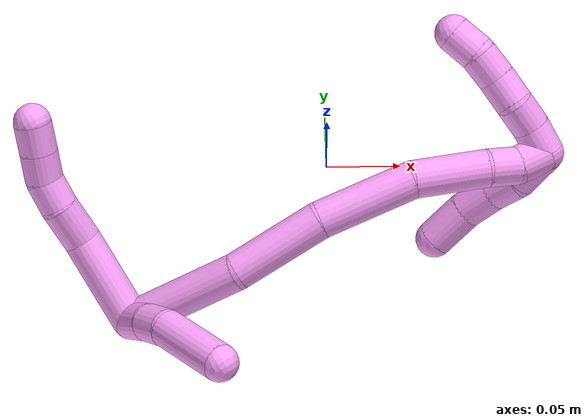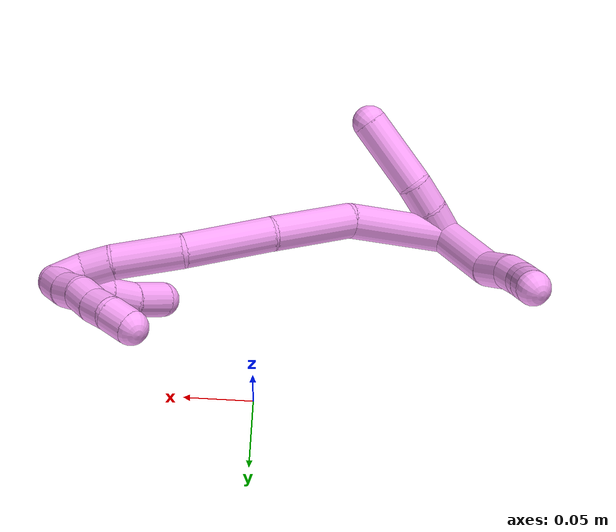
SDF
<sdf version="1.7">
 <world name="default">
  <model name="4">
   <static>0</static>
   <link name="4">
    <collision name="collision-cylinder-e_1_2_8">
     <pose>-0.000805 -0.002108 0.030663 0.068634 -0.026192 -0.000899</pose>
     <geometry><cylinder><radius>0.0125</radius><length>0.061492</length></cylinder></geometry>
     <surface>
      <friction><ode><mu>1.16</mu><mu2>1.16</mu2><slip1>0</slip1><slip2>0</slip2></ode></friction>
      <contact><ode><kp>1e+06</kp><kd>1</kd><max_vel>0</max_vel><min_depth>0.001</min_depth></ode></contact>
     </surface>
    </collision>
    <visual name="visual-cylinder-e_1_2_8">
     <pose>-0.000805 -0.002108 0.030663 0.068634 -0.026192 -0.000899</pose>
     <geometry><cylinder><radius>0.0125</radius><length>0.061492</length></cylinder></geometry>
     <material><ambient>1 0.65098 0.996078 1</ambient></material>
    </visual>
    <collision name="collision-cylinder-e_2_8_9">
     <pose>-0.003469 -0.00936 0.074305 0.377375 -0.13237 -0.025313</pose>
     <geometry><cylinder><radius>0.0125</radius><length>0.028167</length></cylinder></geometry>
     <surface>
      <friction><ode><mu>1.16</mu><mu2>1.16</mu2><slip1>0</slip1><slip2>0</slip2></ode></friction>
      <contact><ode><kp>1e+06</kp><kd>1</kd><max_vel>0</max_vel><min_depth>0.001</min_depth></ode></contact>
     </surface>
    </collision>
    <visual name="visual-cylinder-e_2_8_9">
     <pose>-0.003469 -0.00936 0.074305 0.377375 -0.13237 -0.025313</pose>
     <geometry><cylinder><radius>0.0125</radius><length>0.028167</length></cylinder></geometry>
     <material><ambient>1 0.65098 0.996078 1</ambient></material>
    </visual>
    <collision name="collision-cylinder-e_3_9_10">
     <pose>-0.005399 -0.016667 0.097046 0.21806 -0.007109 -0.000778</pose>
     <geometry><cylinder><radius>0.0125</radius><length>0.02</length></cylinder></geometry>
     <surface>
      <friction><ode><mu>1.16</mu><mu2>1.16</mu2><slip1>0</slip1><slip2>0</slip2></ode></friction>
      <contact><ode><kp>1e+06</kp><kd>1</kd><max_vel>0</max_vel><min_depth>0.001</min_depth></ode></contact>
     </surface>
    </collision>
    <visual name="visual-cylinder-e_3_9_10">
     <pose>-0.005399 -0.016667 0.097046 0.21806 -0.007109 -0.000778</pose>
     <geometry><cylinder><radius>0.0125</radius><length>0.02</length></cylinder></geometry>
     <material><ambient>1 0.65098 0.996078 1</ambient></material>
    </visual>
    <collision name="collision-cylinder-e_4_10_11">
     <pose>-0.003151 -0.023311 0.115557 0.473294 0.231683 0.056111</pose>
     <geometry><cylinder><radius>0.0125</radius><length>0.020198</length></cylinder></geometry>
     <surface>
      <friction><ode><mu>1.16</mu><mu2>1.16</mu2><slip1>0</slip1><slip2>0</slip2></ode></friction>
      <contact><ode><kp>1e+06</kp><kd>1</kd><max_vel>0</max_vel><min_depth>0.001</min_depth></ode></contact>
     </surface>
    </collision>
    <visual name="visual-cylinder-e_4_10_11">
     <pose>-0.003151 -0.023311 0.115557 0.473294 0.231683 0.056111</pose>
     <geometry><cylinder><radius>0.0125</radius><length>0.020198</length></cylinder></geometry>
     <material><ambient>1 0.65098 0.996078 1</ambient></material>
    </visual>
    <collision name="collision-cylinder-e_5_11_6">
     <pose>0.0014 -0.032232 0.133065 0.469174 0.223515 0.053628</pose>
     <geometry><cylinder><radius>0.0125</radius><length>0.020142</length></cylinder></geometry>
     <surface>
      <friction><ode><mu>1.16</mu><mu2>1.16</mu2><slip1>0</slip1><slip2>0</slip2></ode></friction>
      <contact><ode><kp>1e+06</kp><kd>1</kd><max_vel>0</max_vel><min_depth>0.001</min_depth></ode></contact>
     </surface>
    </collision>
    <visual name="visual-cylinder-e_5_11_6">
     <pose>0.0014 -0.032232 0.133065 0.469174 0.223515 0.053628</pose>
     <geometry><cylinder><radius>0.0125</radius><length>0.020142</length></cylinder></geometry>
     <material><ambient>1 0.65098 0.996078 1</ambient></material>
    </visual>
    <collision name="collision-cylinder-e_1_2_12">
     <pose>0.0026 -0.011251 -0.003231 1.85047 0.218543 0.289269</pose>
     <geometry><cylinder><radius>0.0125</radius><length>0.023981</length></cylinder></geometry>
     <surface>
      <friction><ode><mu>1.16</mu><mu2>1.16</mu2><slip1>0</slip1><slip2>0</slip2></ode></friction>
      <contact><ode><kp>1e+06</kp><kd>1</kd><max_vel>0</max_vel><min_depth>0.001</min_depth></ode></contact>
     </surface>
    </collision>
    <visual name="visual-cylinder-e_1_2_12">
     <pose>0.0026 -0.011251 -0.003231 1.85047 0.218543 0.289269</pose>
     <geometry><cylinder><radius>0.0125</radius><length>0.023981</length></cylinder></geometry>
     <material><ambient>1 0.65098 0.996078 1</ambient></material>
    </visual>
    <collision name="collision-cylinder-e_2_12_13">
     <pose>0.007635 -0.03233 -0.010828 1.98877 0.222751 0.340754</pose>
     <geometry><cylinder><radius>0.0125</radius><length>0.022054</length></cylinder></geometry>
     <surface>
      <friction><ode><mu>1.16</mu><mu2>1.16</mu2><slip1>0</slip1><slip2>0</slip2></ode></friction>
      <contact><ode><kp>1e+06</kp><kd>1</kd><max_vel>0</max_vel><min_depth>0.001</min_depth></ode></contact>
     </surface>
    </collision>
    <visual name="visual-cylinder-e_2_12_13">
     <pose>0.007635 -0.03233 -0.010828 1.98877 0.222751 0.340754</pose>
     <geometry><cylinder><radius>0.0125</radius><length>0.022054</length></cylinder></geometry>
     <material><ambient>1 0.65098 0.996078 1</ambient></material>
    </visual>
    <collision name="collision-cylinder-e_3_13_5">
     <pose>0.01538 -0.062213 -0.032447 2.28129 0.198042 0.426482</pose>
     <geometry><cylinder><radius>0.0125</radius><length>0.053965</length></cylinder></geometry>
     <surface>
      <friction><ode><mu>1.16</mu><mu2>1.16</mu2><slip1>0</slip1><slip2>0</slip2></ode></friction>
      <contact><ode><kp>1e+06</kp><kd>1</kd><max_vel>0</max_vel><min_depth>0.001</min_depth></ode></contact>
     </surface>
    </collision>
    <visual name="visual-cylinder-e_3_13_5">
     <pose>0.01538 -0.062213 -0.032447 2.28129 0.198042 0.426482</pose>
     <geometry><cylinder><radius>0.0125</radius><length>0.053965</length></cylinder></geometry>
     <material><ambient>1 0.65098 0.996078 1</ambient></material>
    </visual>
    <collision name="collision-cylinder-e_1_2_14">
     <pose>0.033952 -0.020851 -0.003406 1.73273 1.01415 1.15786</pose>
     <geometry><cylinder><radius>0.0125</radius><length>0.079977</length></cylinder></geometry>
     <surface>
      <friction><ode><mu>1.16</mu><mu2>1.16</mu2><slip1>0</slip1><slip2>0</slip2></ode></friction>
      <contact><ode><kp>1e+06</kp><kd>1</kd><max_vel>0</max_vel><min_depth>0.001</min_depth></ode></contact>
     </surface>
    </collision>
    <visual name="visual-cylinder-e_1_2_14">
     <pose>0.033952 -0.020851 -0.003406 1.73273 1.01415 1.15786</pose>
     <geometry><cylinder><radius>0.0125</radius><length>0.079977</length></cylinder></geometry>
     <material><ambient>1 0.65098 0.996078 1</ambient></material>
    </visual>
    <collision name="collision-cylinder-e_2_14_15">
     <pose>0.097991 -0.050607 -0.006081 1.48881 1.28213 1.20444</pose>
     <geometry><cylinder><radius>0.0125</radius><length>0.062772</length></cylinder></geometry>
     <surface>
      <friction><ode><mu>1.16</mu><mu2>1.16</mu2><slip1>0</slip1><slip2>0</slip2></ode></friction>
      <contact><ode><kp>1e+06</kp><kd>1</kd><max_vel>0</max_vel><min_depth>0.001</min_depth></ode></contact>
     </surface>
    </collision>
    <visual name="visual-cylinder-e_2_14_15">
     <pose>0.097991 -0.050607 -0.006081 1.48881 1.28213 1.20444</pose>
     <geometry><cylinder><radius>0.0125</radius><length>0.062772</length></cylinder></geometry>
     <material><ambient>1 0.65098 0.996078 1</ambient></material>
    </visual>
    <collision name="collision-cylinder-e_3_15_16">
     <pose>0.160077 -0.065216 -0.009324 2.17937 1.35685 1.99219</pose>
     <geometry><cylinder><radius>0.0125</radius><length>0.065491</length></cylinder></geometry>
     <surface>
      <friction><ode><mu>1.16</mu><mu2>1.16</mu2><slip1>0</slip1><slip2>0</slip2></ode></friction>
      <contact><ode><kp>1e+06</kp><kd>1</kd><max_vel>0</max_vel><min_depth>0.001</min_depth></ode></contact>
     </surface>
    </collision>
    <visual name="visual-cylinder-e_3_15_16">
     <pose>0.160077 -0.065216 -0.009324 2.17937 1.35685 1.99219</pose>
     <geometry><cylinder><radius>0.0125</radius><length>0.065491</length></cylinder></geometry>
     <material><ambient>1 0.65098 0.996078 1</ambient></material>
    </visual>
    <collision name="collision-cylinder-e_4_16_17">
     <pose>0.215138 -0.072 -0.022388 3.02341 1.19296 2.96777</pose>
     <geometry><cylinder><radius>0.0125</radius><length>0.049623</length></cylinder></geometry>
     <surface>
      <friction><ode><mu>1.16</mu><mu2>1.16</mu2><slip1>0</slip1><slip2>0</slip2></ode></friction>
      <contact><ode><kp>1e+06</kp><kd>1</kd><max_vel>0</max_vel><min_depth>0.001</min_depth></ode></contact>
     </surface>
    </collision>
    <visual name="visual-cylinder-e_4_16_17">
     <pose>0.215138 -0.072 -0.022388 3.02341 1.19296 2.96777</pose>
     <geometry><cylinder><radius>0.0125</radius><length>0.049623</length></cylinder></geometry>
     <material><ambient>1 0.65098 0.996078 1</ambient></material>
    </visual>
    <collision name="collision-cylinder-e_5_17_18">
     <pose>0.24773 -0.071743 -0.035762 -2.83921 1.13075 -2.67025</pose>
     <geometry><cylinder><radius>0.0125</radius><length>0.02107</length></cylinder></geometry>
     <surface>
      <friction><ode><mu>1.16</mu><mu2>1.16</mu2><slip1>0</slip1><slip2>0</slip2></ode></friction>
      <contact><ode><kp>1e+06</kp><kd>1</kd><max_vel>0</max_vel><min_depth>0.001</min_depth></ode></contact>
     </surface>
    </collision>
    <visual name="visual-cylinder-e_5_17_18">
     <pose>0.24773 -0.071743 -0.035762 -2.83921 1.13075 -2.67025</pose>
     <geometry><cylinder><radius>0.0125</radius><length>0.02107</length></cylinder></geometry>
     <material><ambient>1 0.65098 0.996078 1</ambient></material>
    </visual>
    <collision name="collision-cylinder-e_6_18_1">
     <pose>0.26771 -0.069708 -0.041184 -2.59088 1.44369 -2.52048</pose>
     <geometry><cylinder><radius>0.0125</radius><length>0.021066</length></cylinder></geometry>
     <surface>
      <friction><ode><mu>1.16</mu><mu2>1.16</mu2><slip1>0</slip1><slip2>0</slip2></ode></friction>
      <contact><ode><kp>1e+06</kp><kd>1</kd><max_vel>0</max_vel><min_depth>0.001</min_depth></ode></contact>
     </surface>
    </collision>
    <visual name="visual-cylinder-e_6_18_1">
     <pose>0.26771 -0.069708 -0.041184 -2.59088 1.44369 -2.52048</pose>
     <geometry><cylinder><radius>0.0125</radius><length>0.021066</length></cylinder></geometry>
     <material><ambient>1 0.65098 0.996078 1</ambient></material>
    </visual>
    <collision name="collision-cylinder-e_1_1_19">
     <pose>0.268262 -0.060161 -0.045622 -1.92788 -0.808785 1.10487</pose>
     <geometry><cylinder><radius>0.0125</radius><length>0.027357</length></cylinder></geometry>
     <surface>
      <friction><ode><mu>1.16</mu><mu2>1.16</mu2><slip1>0</slip1><slip2>0</slip2></ode></friction>
      <contact><ode><kp>1e+06</kp><kd>1</kd><max_vel>0</max_vel><min_depth>0.001</min_depth></ode></contact>
     </surface>
    </collision>
    <visual name="visual-cylinder-e_1_1_19">
     <pose>0.268262 -0.060161 -0.045622 -1.92788 -0.808785 1.10487</pose>
     <geometry><cylinder><radius>0.0125</radius><length>0.027357</length></cylinder></geometry>
     <material><ambient>1 0.65098 0.996078 1</ambient></material>
    </visual>
    <collision name="collision-cylinder-e_2_19_20">
     <pose>0.251054 -0.044428 -0.048526 -1.51317 -0.814623 0.773512</pose>
     <geometry><cylinder><radius>0.0125</radius><length>0.020105</length></cylinder></geometry>
     <surface>
      <friction><ode><mu>1.16</mu><mu2>1.16</mu2><slip1>0</slip1><slip2>0</slip2></ode></friction>
      <contact><ode><kp>1e+06</kp><kd>1</kd><max_vel>0</max_vel><min_depth>0.001</min_depth></ode></contact>
     </surface>
    </collision>
    <visual name="visual-cylinder-e_2_19_20">
     <pose>0.251054 -0.044428 -0.048526 -1.51317 -0.814623 0.773512</pose>
     <geometry><cylinder><radius>0.0125</radius><length>0.020105</length></cylinder></geometry>
     <material><ambient>1 0.65098 0.996078 1</ambient></material>
    </visual>
    <collision name="collision-cylinder-e_3_20_21">
     <pose>0.234535 -0.030419 -0.048792 -1.66369 -0.910225 0.985752</pose>
     <geometry><cylinder><radius>0.0125</radius><length>0.023317</length></cylinder></geometry>
     <surface>
      <friction><ode><mu>1.16</mu><mu2>1.16</mu2><slip1>0</slip1><slip2>0</slip2></ode></friction>
      <contact><ode><kp>1e+06</kp><kd>1</kd><max_vel>0</max_vel><min_depth>0.001</min_depth></ode></contact>
     </surface>
    </collision>
    <visual name="visual-cylinder-e_3_20_21">
     <pose>0.234535 -0.030419 -0.048792 -1.66369 -0.910225 0.985752</pose>
     <geometry><cylinder><radius>0.0125</radius><length>0.023317</length></cylinder></geometry>
     <material><ambient>1 0.65098 0.996078 1</ambient></material>
    </visual>
    <collision name="collision-cylinder-e_4_21_4">
     <pose>0.213301 -0.015625 -0.052606 -1.96041 -0.96716 1.32901</pose>
     <geometry><cylinder><radius>0.0125</radius><length>0.029221</length></cylinder></geometry>
     <surface>
      <friction><ode><mu>1.16</mu><mu2>1.16</mu2><slip1>0</slip1><slip2>0</slip2></ode></friction>
      <contact><ode><kp>1e+06</kp><kd>1</kd><max_vel>0</max_vel><min_depth>0.001</min_depth></ode></contact>
     </surface>
    </collision>
    <visual name="visual-cylinder-e_4_21_4">
     <pose>0.213301 -0.015625 -0.052606 -1.96041 -0.96716 1.32901</pose>
     <geometry><cylinder><radius>0.0125</radius><length>0.029221</length></cylinder></geometry>
     <material><ambient>1 0.65098 0.996078 1</ambient></material>
    </visual>
    <collision name="collision-cylinder-e_1_1_22">
     <pose>0.277907 -0.071068 -0.032539 0.207465 -0.025148 -0.002618</pose>
     <geometry><cylinder><radius>0.0125</radius><length>0.02</length></cylinder></geometry>
     <surface>
      <friction><ode><mu>1.16</mu><mu2>1.16</mu2><slip1>0</slip1><slip2>0</slip2></ode></friction>
      <contact><ode><kp>1e+06</kp><kd>1</kd><max_vel>0</max_vel><min_depth>0.001</min_depth></ode></contact>
     </surface>
    </collision>
    <visual name="visual-cylinder-e_1_1_22">
     <pose>0.277907 -0.071068 -0.032539 0.207465 -0.025148 -0.002618</pose>
     <geometry><cylinder><radius>0.0125</radius><length>0.02</length></cylinder></geometry>
     <material><ambient>1 0.65098 0.996078 1</ambient></material>
    </visual>
    <collision name="collision-cylinder-e_2_22_23">
     <pose>0.275903 -0.076187 -0.013399 0.316051 -0.176158 -0.028142</pose>
     <geometry><cylinder><radius>0.0125</radius><length>0.02</length></cylinder></geometry>
     <surface>
      <friction><ode><mu>1.16</mu><mu2>1.16</mu2><slip1>0</slip1><slip2>0</slip2></ode></friction>
      <contact><ode><kp>1e+06</kp><kd>1</kd><max_vel>0</max_vel><min_depth>0.001</min_depth></ode></contact>
     </surface>
    </collision>
    <visual name="visual-cylinder-e_2_22_23">
     <pose>0.275903 -0.076187 -0.013399 0.316051 -0.176158 -0.028142</pose>
     <geometry><cylinder><radius>0.0125</radius><length>0.02</length></cylinder></geometry>
     <material><ambient>1 0.65098 0.996078 1</ambient></material>
    </visual>
    <collision name="collision-cylinder-e_3_23_24">
     <pose>0.273229 -0.079477 0.005913 0.02304 -0.092272 -0.001064</pose>
     <geometry><cylinder><radius>0.0125</radius><length>0.02</length></cylinder></geometry>
     <surface>
      <friction><ode><mu>1.16</mu><mu2>1.16</mu2><slip1>0</slip1><slip2>0</slip2></ode></friction>
      <contact><ode><kp>1e+06</kp><kd>1</kd><max_vel>0</max_vel><min_depth>0.001</min_depth></ode></contact>
     </surface>
    </collision>
    <visual name="visual-cylinder-e_3_23_24">
     <pose>0.273229 -0.079477 0.005913 0.02304 -0.092272 -0.001064</pose>
     <geometry><cylinder><radius>0.0125</radius><length>0.02</length></cylinder></geometry>
     <material><ambient>1 0.65098 0.996078 1</ambient></material>
    </visual>
    <collision name="collision-cylinder-e_4_24_25">
     <pose>0.27059 -0.081056 0.025627 0.137489 -0.172572 -0.011912</pose>
     <geometry><cylinder><radius>0.0125</radius><length>0.02</length></cylinder></geometry>
     <surface>
      <friction><ode><mu>1.16</mu><mu2>1.16</mu2><slip1>0</slip1><slip2>0</slip2></ode></friction>
      <contact><ode><kp>1e+06</kp><kd>1</kd><max_vel>0</max_vel><min_depth>0.001</min_depth></ode></contact>
     </surface>
    </collision>
    <visual name="visual-cylinder-e_4_24_25">
     <pose>0.27059 -0.081056 0.025627 0.137489 -0.172572 -0.011912</pose>
     <geometry><cylinder><radius>0.0125</radius><length>0.02</length></cylinder></geometry>
     <material><ambient>1 0.65098 0.996078 1</ambient></material>
    </visual>
    <collision name="collision-cylinder-e_5_25_3">
     <pose>0.265869 -0.080773 0.044782 -0.172126 -0.305112 0.026528</pose>
     <geometry><cylinder><radius>0.0125</radius><length>0.02</length></cylinder></geometry>
     <surface>
      <friction><ode><mu>1.16</mu><mu2>1.16</mu2><slip1>0</slip1><slip2>0</slip2></ode></friction>
      <contact><ode><kp>1e+06</kp><kd>1</kd><max_vel>0</max_vel><min_depth>0.001</min_depth></ode></contact>
     </surface>
    </collision>
    <visual name="visual-cylinder-e_5_25_3">
     <pose>0.265869 -0.080773 0.044782 -0.172126 -0.305112 0.026528</pose>
     <geometry><cylinder><radius>0.0125</radius><length>0.02</length></cylinder></geometry>
     <material><ambient>1 0.65098 0.996078 1</ambient></material>
    </visual>
    <collision name="collision-sphere-3">
     <pose>0.262865 -0.079139 0.05418 0 -0 0</pose>
     <geometry><sphere><radius>0.0125</radius></sphere></geometry>
     <surface>
      <friction><ode><mu>1.16</mu><mu2>1.16</mu2><slip1>0</slip1><slip2>0</slip2></ode></friction>
      <contact><ode><kp>1e+06</kp><kd>1</kd><max_vel>0</max_vel><min_depth>0.001</min_depth></ode></contact>
     </surface>
    </collision>
    <visual name="visual-sphere-3">
     <pose>0.262865 -0.079139 0.05418 0 -0 0</pose>
     <geometry><sphere><radius>0.0125</radius></sphere></geometry>
     <material><ambient>1 0.65098 0.996078 1</ambient></material>
    </visual>
    <collision name="collision-sphere-25">
     <pose>0.268873 -0.082407 0.035385 0 -0 0</pose>
     <geometry><sphere><radius>0.0125</radius></sphere></geometry>
     <surface>
      <friction><ode><mu>1.16</mu><mu2>1.16</mu2><slip1>0</slip1><slip2>0</slip2></ode></friction>
      <contact><ode><kp>1e+06</kp><kd>1</kd><max_vel>0</max_vel><min_depth>0.001</min_depth></ode></contact>
     </surface>
    </collision>
    <visual name="visual-sphere-25">
     <pose>0.268873 -0.082407 0.035385 0 -0 0</pose>
     <geometry><sphere><radius>0.0125</radius></sphere></geometry>
     <material><ambient>1 0.65098 0.996078 1</ambient></material>
    </visual>
    <collision name="collision-sphere-24">
     <pose>0.272307 -0.079706 0.015868 0 -0 0</pose>
     <geometry><sphere><radius>0.0125</radius></sphere></geometry>
     <surface>
      <friction><ode><mu>1.16</mu><mu2>1.16</mu2><slip1>0</slip1><slip2>0</slip2></ode></friction>
      <contact><ode><kp>1e+06</kp><kd>1</kd><max_vel>0</max_vel><min_depth>0.001</min_depth></ode></contact>
     </surface>
    </collision>
    <visual name="visual-sphere-24">
     <pose>0.272307 -0.079706 0.015868 0 -0 0</pose>
     <geometry><sphere><radius>0.0125</radius></sphere></geometry>
     <material><ambient>1 0.65098 0.996078 1</ambient></material>
    </visual>
    <collision name="collision-sphere-23">
     <pose>0.27415 -0.079247 -0.004041 0 -0 0</pose>
     <geometry><sphere><radius>0.0125</radius></sphere></geometry>
     <surface>
      <friction><ode><mu>1.16</mu><mu2>1.16</mu2><slip1>0</slip1><slip2>0</slip2></ode></friction>
      <contact><ode><kp>1e+06</kp><kd>1</kd><max_vel>0</max_vel><min_depth>0.001</min_depth></ode></contact>
     </surface>
    </collision>
    <visual name="visual-sphere-23">
     <pose>0.27415 -0.079247 -0.004041 0 -0 0</pose>
     <geometry><sphere><radius>0.0125</radius></sphere></geometry>
     <material><ambient>1 0.65098 0.996078 1</ambient></material>
    </visual>
    <collision name="collision-sphere-22">
     <pose>0.277655 -0.073127 -0.022757 0 -0 0</pose>
     <geometry><sphere><radius>0.0125</radius></sphere></geometry>
     <surface>
      <friction><ode><mu>1.16</mu><mu2>1.16</mu2><slip1>0</slip1><slip2>0</slip2></ode></friction>
      <contact><ode><kp>1e+06</kp><kd>1</kd><max_vel>0</max_vel><min_depth>0.001</min_depth></ode></contact>
     </surface>
    </collision>
    <visual name="visual-sphere-22">
     <pose>0.277655 -0.073127 -0.022757 0 -0 0</pose>
     <geometry><sphere><radius>0.0125</radius></sphere></geometry>
     <material><ambient>1 0.65098 0.996078 1</ambient></material>
    </visual>
    <collision name="collision-sphere-4">
     <pose>0.201272 -0.007953 -0.055756 0 -0 0</pose>
     <geometry><sphere><radius>0.0125</radius></sphere></geometry>
     <surface>
      <friction><ode><mu>1.16</mu><mu2>1.16</mu2><slip1>0</slip1><slip2>0</slip2></ode></friction>
      <contact><ode><kp>1e+06</kp><kd>1</kd><max_vel>0</max_vel><min_depth>0.001</min_depth></ode></contact>
     </surface>
    </collision>
    <visual name="visual-sphere-4">
     <pose>0.201272 -0.007953 -0.055756 0 -0 0</pose>
     <geometry><sphere><radius>0.0125</radius></sphere></geometry>
     <material><ambient>1 0.65098 0.996078 1</ambient></material>
    </visual>
    <collision name="collision-sphere-21">
     <pose>0.225329 -0.023297 -0.049456 0 -0 0</pose>
     <geometry><sphere><radius>0.0125</radius></sphere></geometry>
     <surface>
      <friction><ode><mu>1.16</mu><mu2>1.16</mu2><slip1>0</slip1><slip2>0</slip2></ode></friction>
      <contact><ode><kp>1e+06</kp><kd>1</kd><max_vel>0</max_vel><min_depth>0.001</min_depth></ode></contact>
     </surface>
    </collision>
    <visual name="visual-sphere-21">
     <pose>0.225329 -0.023297 -0.049456 0 -0 0</pose>
     <geometry><sphere><radius>0.0125</radius></sphere></geometry>
     <material><ambient>1 0.65098 0.996078 1</ambient></material>
    </visual>
    <collision name="collision-sphere-20">
     <pose>0.243741 -0.037542 -0.048129 0 -0 0</pose>
     <geometry><sphere><radius>0.0125</radius></sphere></geometry>
     <surface>
      <friction><ode><mu>1.16</mu><mu2>1.16</mu2><slip1>0</slip1><slip2>0</slip2></ode></friction>
      <contact><ode><kp>1e+06</kp><kd>1</kd><max_vel>0</max_vel><min_depth>0.001</min_depth></ode></contact>
     </surface>
    </collision>
    <visual name="visual-sphere-20">
     <pose>0.243741 -0.037542 -0.048129 0 -0 0</pose>
     <geometry><sphere><radius>0.0125</radius></sphere></geometry>
     <material><ambient>1 0.65098 0.996078 1</ambient></material>
    </visual>
    <collision name="collision-sphere-6">
     <pose>0.003632 -0.036672 0.141825 0 -0 0</pose>
     <geometry><sphere><radius>0.0125</radius></sphere></geometry>
     <surface>
      <friction><ode><mu>1.16</mu><mu2>1.16</mu2><slip1>0</slip1><slip2>0</slip2></ode></friction>
      <contact><ode><kp>1e+06</kp><kd>1</kd><max_vel>0</max_vel><min_depth>0.001</min_depth></ode></contact>
     </surface>
    </collision>
    <visual name="visual-sphere-6">
     <pose>0.003632 -0.036672 0.141825 0 -0 0</pose>
     <geometry><sphere><radius>0.0125</radius></sphere></geometry>
     <material><ambient>1 0.65098 0.996078 1</ambient></material>
    </visual>
    <collision name="collision-sphere-11">
     <pose>-0.000832 -0.027791 0.124306 0 -0 0</pose>
     <geometry><sphere><radius>0.0125</radius></sphere></geometry>
     <surface>
      <friction><ode><mu>1.16</mu><mu2>1.16</mu2><slip1>0</slip1><slip2>0</slip2></ode></friction>
      <contact><ode><kp>1e+06</kp><kd>1</kd><max_vel>0</max_vel><min_depth>0.001</min_depth></ode></contact>
     </surface>
    </collision>
    <visual name="visual-sphere-11">
     <pose>-0.000832 -0.027791 0.124306 0 -0 0</pose>
     <geometry><sphere><radius>0.0125</radius></sphere></geometry>
     <material><ambient>1 0.65098 0.996078 1</ambient></material>
    </visual>
    <collision name="collision-sphere-10">
     <pose>-0.00547 -0.018831 0.106809 0 -0 0</pose>
     <geometry><sphere><radius>0.0125</radius></sphere></geometry>
     <surface>
      <friction><ode><mu>1.16</mu><mu2>1.16</mu2><slip1>0</slip1><slip2>0</slip2></ode></friction>
      <contact><ode><kp>1e+06</kp><kd>1</kd><max_vel>0</max_vel><min_depth>0.001</min_depth></ode></contact>
     </surface>
    </collision>
    <visual name="visual-sphere-10">
     <pose>-0.00547 -0.018831 0.106809 0 -0 0</pose>
     <geometry><sphere><radius>0.0125</radius></sphere></geometry>
     <material><ambient>1 0.65098 0.996078 1</ambient></material>
    </visual>
    <collision name="collision-sphere-9">
     <pose>-0.005328 -0.014504 0.087283 0 -0 0</pose>
     <geometry><sphere><radius>0.0125</radius></sphere></geometry>
     <surface>
      <friction><ode><mu>1.16</mu><mu2>1.16</mu2><slip1>0</slip1><slip2>0</slip2></ode></friction>
      <contact><ode><kp>1e+06</kp><kd>1</kd><max_vel>0</max_vel><min_depth>0.001</min_depth></ode></contact>
     </surface>
    </collision>
    <visual name="visual-sphere-9">
     <pose>-0.005328 -0.014504 0.087283 0 -0 0</pose>
     <geometry><sphere><radius>0.0125</radius></sphere></geometry>
     <material><ambient>1 0.65098 0.996078 1</ambient></material>
    </visual>
    <collision name="collision-sphere-2">
     <geometry><sphere><radius>0.0125</radius></sphere></geometry>
     <surface>
      <friction><ode><mu>1.16</mu><mu2>1.16</mu2><slip1>0</slip1><slip2>0</slip2></ode></friction>
      <contact><ode><kp>1e+06</kp><kd>1</kd><max_vel>0</max_vel><min_depth>0.001</min_depth></ode></contact>
     </surface>
    </collision>
    <visual name="visual-sphere-2">
     <geometry><sphere><radius>0.0125</radius></sphere></geometry>
     <material><ambient>1 0.65098 0.996078 1</ambient></material>
    </visual>
    <collision name="collision-sphere-19">
     <pose>0.258367 -0.051314 -0.048923 0 -0 0</pose>
     <geometry><sphere><radius>0.0125</radius></sphere></geometry>
     <surface>
      <friction><ode><mu>1.16</mu><mu2>1.16</mu2><slip1>0</slip1><slip2>0</slip2></ode></friction>
      <contact><ode><kp>1e+06</kp><kd>1</kd><max_vel>0</max_vel><min_depth>0.001</min_depth></ode></contact>
     </surface>
    </collision>
    <visual name="visual-sphere-19">
     <pose>0.258367 -0.051314 -0.048923 0 -0 0</pose>
     <geometry><sphere><radius>0.0125</radius></sphere></geometry>
     <material><ambient>1 0.65098 0.996078 1</ambient></material>
    </visual>
    <collision name="collision-sphere-8">
     <pose>-0.00161 -0.004216 0.061327 0 -0 0</pose>
     <geometry><sphere><radius>0.0125</radius></sphere></geometry>
     <surface>
      <friction><ode><mu>1.16</mu><mu2>1.16</mu2><slip1>0</slip1><slip2>0</slip2></ode></friction>
      <contact><ode><kp>1e+06</kp><kd>1</kd><max_vel>0</max_vel><min_depth>0.001</min_depth></ode></contact>
     </surface>
    </collision>
    <visual name="visual-sphere-8">
     <pose>-0.00161 -0.004216 0.061327 0 -0 0</pose>
     <geometry><sphere><radius>0.0125</radius></sphere></geometry>
     <material><ambient>1 0.65098 0.996078 1</ambient></material>
    </visual>
    <collision name="collision-sphere-12">
     <pose>0.005199 -0.022501 -0.006462 0 -0 0</pose>
     <geometry><sphere><radius>0.0125</radius></sphere></geometry>
     <surface>
      <friction><ode><mu>1.16</mu><mu2>1.16</mu2><slip1>0</slip1><slip2>0</slip2></ode></friction>
      <contact><ode><kp>1e+06</kp><kd>1</kd><max_vel>0</max_vel><min_depth>0.001</min_depth></ode></contact>
     </surface>
    </collision>
    <visual name="visual-sphere-12">
     <pose>0.005199 -0.022501 -0.006462 0 -0 0</pose>
     <geometry><sphere><radius>0.0125</radius></sphere></geometry>
     <material><ambient>1 0.65098 0.996078 1</ambient></material>
    </visual>
    <collision name="collision-sphere-13">
     <pose>0.010071 -0.042159 -0.015193 0 -0 0</pose>
     <geometry><sphere><radius>0.0125</radius></sphere></geometry>
     <surface>
      <friction><ode><mu>1.16</mu><mu2>1.16</mu2><slip1>0</slip1><slip2>0</slip2></ode></friction>
      <contact><ode><kp>1e+06</kp><kd>1</kd><max_vel>0</max_vel><min_depth>0.001</min_depth></ode></contact>
     </surface>
    </collision>
    <visual name="visual-sphere-13">
     <pose>0.010071 -0.042159 -0.015193 0 -0 0</pose>
     <geometry><sphere><radius>0.0125</radius></sphere></geometry>
     <material><ambient>1 0.65098 0.996078 1</ambient></material>
    </visual>
    <collision name="collision-sphere-5">
     <pose>0.020689 -0.082266 -0.049701 0 -0 0</pose>
     <geometry><sphere><radius>0.0125</radius></sphere></geometry>
     <surface>
      <friction><ode><mu>1.16</mu><mu2>1.16</mu2><slip1>0</slip1><slip2>0</slip2></ode></friction>
      <contact><ode><kp>1e+06</kp><kd>1</kd><max_vel>0</max_vel><min_depth>0.001</min_depth></ode></contact>
     </surface>
    </collision>
    <visual name="visual-sphere-5">
     <pose>0.020689 -0.082266 -0.049701 0 -0 0</pose>
     <geometry><sphere><radius>0.0125</radius></sphere></geometry>
     <material><ambient>1 0.65098 0.996078 1</ambient></material>
    </visual>
    <collision name="collision-sphere-14">
     <pose>0.067903 -0.041703 -0.006813 0 -0 0</pose>
     <geometry><sphere><radius>0.0125</radius></sphere></geometry>
     <surface>
      <friction><ode><mu>1.16</mu><mu2>1.16</mu2><slip1>0</slip1><slip2>0</slip2></ode></friction>
      <contact><ode><kp>1e+06</kp><kd>1</kd><max_vel>0</max_vel><min_depth>0.001</min_depth></ode></contact>
     </surface>
    </collision>
    <visual name="visual-sphere-14">
     <pose>0.067903 -0.041703 -0.006813 0 -0 0</pose>
     <geometry><sphere><radius>0.0125</radius></sphere></geometry>
     <material><ambient>1 0.65098 0.996078 1</ambient></material>
    </visual>
    <collision name="collision-sphere-15">
     <pose>0.128078 -0.059512 -0.005349 0 -0 0</pose>
     <geometry><sphere><radius>0.0125</radius></sphere></geometry>
     <surface>
      <friction><ode><mu>1.16</mu><mu2>1.16</mu2><slip1>0</slip1><slip2>0</slip2></ode></friction>
      <contact><ode><kp>1e+06</kp><kd>1</kd><max_vel>0</max_vel><min_depth>0.001</min_depth></ode></contact>
     </surface>
    </collision>
    <visual name="visual-sphere-15">
     <pose>0.128078 -0.059512 -0.005349 0 -0 0</pose>
     <geometry><sphere><radius>0.0125</radius></sphere></geometry>
     <material><ambient>1 0.65098 0.996078 1</ambient></material>
    </visual>
    <collision name="collision-sphere-16">
     <pose>0.192076 -0.070921 -0.013299 0 -0 0</pose>
     <geometry><sphere><radius>0.0125</radius></sphere></geometry>
     <surface>
      <friction><ode><mu>1.16</mu><mu2>1.16</mu2><slip1>0</slip1><slip2>0</slip2></ode></friction>
      <contact><ode><kp>1e+06</kp><kd>1</kd><max_vel>0</max_vel><min_depth>0.001</min_depth></ode></contact>
     </surface>
    </collision>
    <visual name="visual-sphere-16">
     <pose>0.192076 -0.070921 -0.013299 0 -0 0</pose>
     <geometry><sphere><radius>0.0125</radius></sphere></geometry>
     <material><ambient>1 0.65098 0.996078 1</ambient></material>
    </visual>
    <collision name="collision-sphere-17">
     <pose>0.238199 -0.073079 -0.031478 0 -0 0</pose>
     <geometry><sphere><radius>0.0125</radius></sphere></geometry>
     <surface>
      <friction><ode><mu>1.16</mu><mu2>1.16</mu2><slip1>0</slip1><slip2>0</slip2></ode></friction>
      <contact><ode><kp>1e+06</kp><kd>1</kd><max_vel>0</max_vel><min_depth>0.001</min_depth></ode></contact>
     </surface>
    </collision>
    <visual name="visual-sphere-17">
     <pose>0.238199 -0.073079 -0.031478 0 -0 0</pose>
     <geometry><sphere><radius>0.0125</radius></sphere></geometry>
     <material><ambient>1 0.65098 0.996078 1</ambient></material>
    </visual>
    <collision name="collision-sphere-18">
     <pose>0.257262 -0.070406 -0.040046 0 -0 0</pose>
     <geometry><sphere><radius>0.0125</radius></sphere></geometry>
     <surface>
      <friction><ode><mu>1.16</mu><mu2>1.16</mu2><slip1>0</slip1><slip2>0</slip2></ode></friction>
      <contact><ode><kp>1e+06</kp><kd>1</kd><max_vel>0</max_vel><min_depth>0.001</min_depth></ode></contact>
     </surface>
    </collision>
    <visual name="visual-sphere-18">
     <pose>0.257262 -0.070406 -0.040046 0 -0 0</pose>
     <geometry><sphere><radius>0.0125</radius></sphere></geometry>
     <material><ambient>1 0.65098 0.996078 1</ambient></material>
    </visual>
    <collision name="collision-sphere-1">
     <pose>0.278158 -0.069009 -0.042322 0 -0 0</pose>
     <geometry><sphere><radius>0.0125</radius></sphere></geometry>
     <surface>
      <friction><ode><mu>1.16</mu><mu2>1.16</mu2><slip1>0</slip1><slip2>0</slip2></ode></friction>
      <contact><ode><kp>1e+06</kp><kd>1</kd><max_vel>0</max_vel><min_depth>0.001</min_depth></ode></contact>
     </surface>
    </collision>
    <visual name="visual-sphere-1">
     <pose>0.278158 -0.069009 -0.042322 0 -0 0</pose>
     <geometry><sphere><radius>0.0125</radius></sphere></geometry>
     <material><ambient>1 0.65098 0.996078 1</ambient></material>
    </visual>
    <inertial>
     <pose>0.124017 -0.044442 0.000772 0 -0 0</pose>
     <mass>0.75</mass>
     <inertia>
      <ixx>0.000123</ixx>
      <ixy>0</ixy>
      <ixz>0</ixz>
      <iyy>0.000161</iyy>
      <iyz>0</iyz>
      <izz>-3.6e-05</izz>
     </inertia>
    </inertial>
   </link>
   <pose>-0.130052 -0.130971 0.011685 -1.01764 -0.113787 0.548824</pose>
  </model>
 </world>
</sdf>
